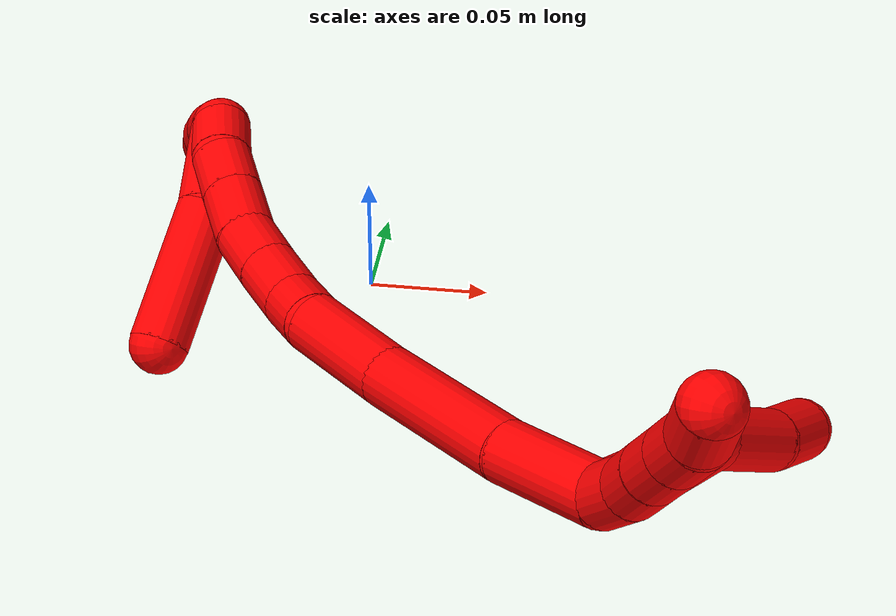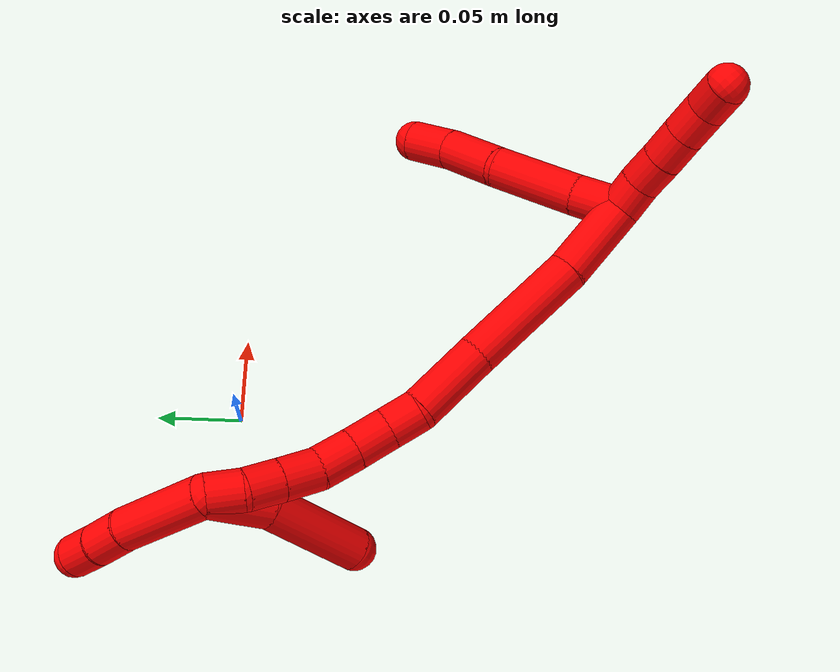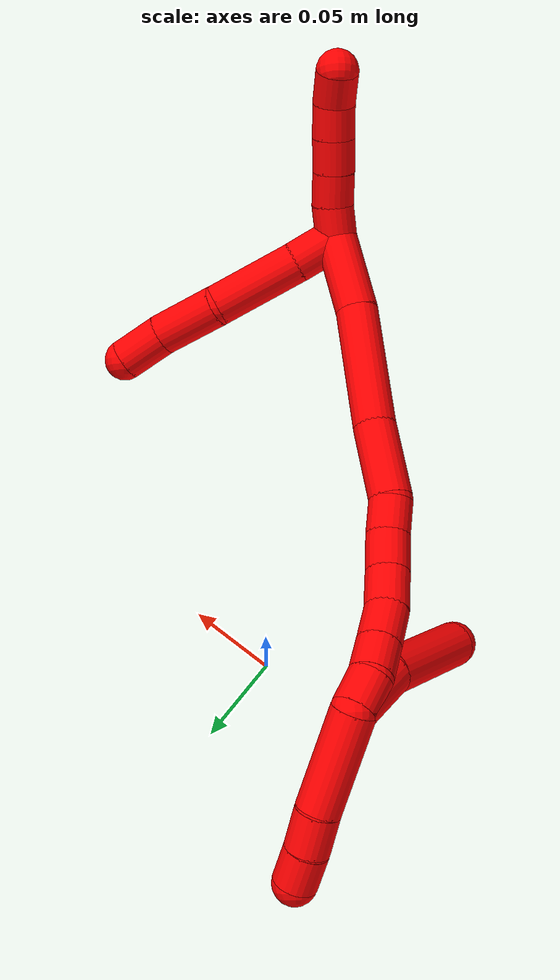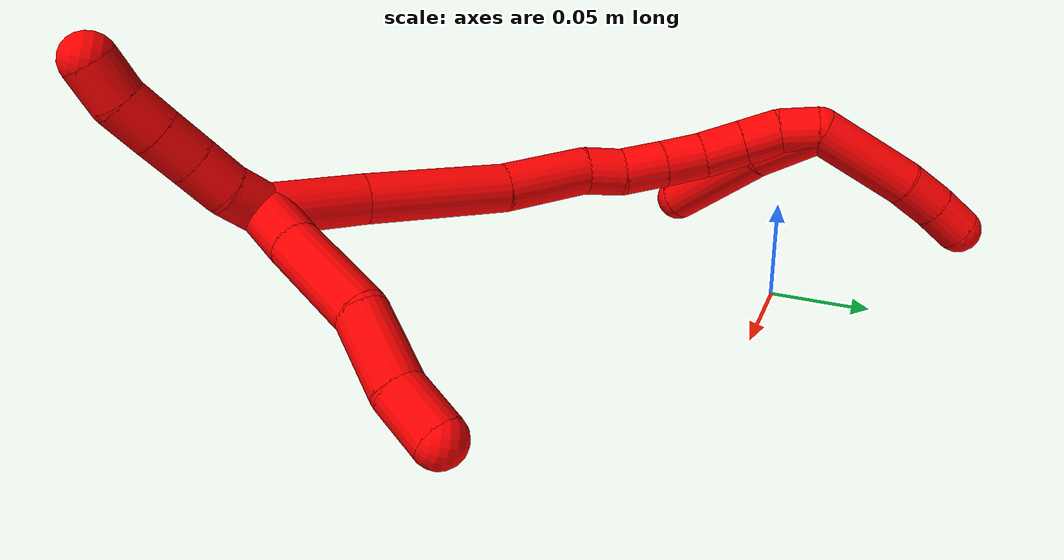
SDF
<sdf version="1.7">
 <world name="default">
  <model name="2">
   <static>0</static>
   <link name="2">
    <collision name="collision-cylinder-e_1_2_8">
     <pose>0.005946 0.01095 -0.00622 -2.08738 0.441114 -0.735375</pose>
     <geometry><cylinder><radius>0.0125</radius><length>0.027853</length></cylinder></geometry>
     <surface>
      <friction><ode><mu>1.16</mu><mu2>1.16</mu2><slip1>0</slip1><slip2>0</slip2></ode></friction>
      <contact><ode><kp>1e+06</kp><kd>1</kd><max_vel>0</max_vel><min_depth>0.001</min_depth></ode></contact>
     </surface>
    </collision>
    <visual name="visual-cylinder-e_1_2_8">
     <pose>0.005946 0.01095 -0.00622 -2.08738 0.441114 -0.735375</pose>
     <geometry><cylinder><radius>0.0125</radius><length>0.027853</length></cylinder></geometry>
     <material><ambient>1 0 0 1</ambient></material>
    </visual>
    <collision name="collision-cylinder-e_2_8_9">
     <pose>0.021747 0.044146 -0.024043 -2.05157 0.374293 -0.605483</pose>
     <geometry><cylinder><radius>0.0125</radius><length>0.053912</length></cylinder></geometry>
     <surface>
      <friction><ode><mu>1.16</mu><mu2>1.16</mu2><slip1>0</slip1><slip2>0</slip2></ode></friction>
      <contact><ode><kp>1e+06</kp><kd>1</kd><max_vel>0</max_vel><min_depth>0.001</min_depth></ode></contact>
     </surface>
    </collision>
    <visual name="visual-cylinder-e_2_8_9">
     <pose>0.021747 0.044146 -0.024043 -2.05157 0.374293 -0.605483</pose>
     <geometry><cylinder><radius>0.0125</radius><length>0.053912</length></cylinder></geometry>
     <material><ambient>1 0 0 1</ambient></material>
    </visual>
    <collision name="collision-cylinder-e_3_9_10">
     <pose>0.044268 0.080395 -0.042396 -2.01993 0.683669 -1.0308</pose>
     <geometry><cylinder><radius>0.0125</radius><length>0.040103</length></cylinder></geometry>
     <surface>
      <friction><ode><mu>1.16</mu><mu2>1.16</mu2><slip1>0</slip1><slip2>0</slip2></ode></friction>
      <contact><ode><kp>1e+06</kp><kd>1</kd><max_vel>0</max_vel><min_depth>0.001</min_depth></ode></contact>
     </surface>
    </collision>
    <visual name="visual-cylinder-e_3_9_10">
     <pose>0.044268 0.080395 -0.042396 -2.01993 0.683669 -1.0308</pose>
     <geometry><cylinder><radius>0.0125</radius><length>0.040103</length></cylinder></geometry>
     <material><ambient>1 0 0 1</ambient></material>
    </visual>
    <collision name="collision-cylinder-e_4_10_6">
     <pose>0.063572 0.104762 -0.055955 -2.15217 0.491487 -0.870413</pose>
     <geometry><cylinder><radius>0.0125</radius><length>0.028132</length></cylinder></geometry>
     <surface>
      <friction><ode><mu>1.16</mu><mu2>1.16</mu2><slip1>0</slip1><slip2>0</slip2></ode></friction>
      <contact><ode><kp>1e+06</kp><kd>1</kd><max_vel>0</max_vel><min_depth>0.001</min_depth></ode></contact>
     </surface>
    </collision>
    <visual name="visual-cylinder-e_4_10_6">
     <pose>0.063572 0.104762 -0.055955 -2.15217 0.491487 -0.870413</pose>
     <geometry><cylinder><radius>0.0125</radius><length>0.028132</length></cylinder></geometry>
     <material><ambient>1 0 0 1</ambient></material>
    </visual>
    <collision name="collision-cylinder-e_1_2_11">
     <pose>-0.003139 0.001865 0.00931 -0.197701 -0.319298 0.031935</pose>
     <geometry><cylinder><radius>0.0125</radius><length>0.02</length></cylinder></geometry>
     <surface>
      <friction><ode><mu>1.16</mu><mu2>1.16</mu2><slip1>0</slip1><slip2>0</slip2></ode></friction>
      <contact><ode><kp>1e+06</kp><kd>1</kd><max_vel>0</max_vel><min_depth>0.001</min_depth></ode></contact>
     </surface>
    </collision>
    <visual name="visual-cylinder-e_1_2_11">
     <pose>-0.003139 0.001865 0.00931 -0.197701 -0.319298 0.031935</pose>
     <geometry><cylinder><radius>0.0125</radius><length>0.02</length></cylinder></geometry>
     <material><ambient>1 0 0 1</ambient></material>
    </visual>
    <collision name="collision-cylinder-e_2_11_12">
     <pose>-0.011129 0.00473 0.027306 -0.114615 -0.506504 0.029694</pose>
     <geometry><cylinder><radius>0.0125</radius><length>0.02</length></cylinder></geometry>
     <surface>
      <friction><ode><mu>1.16</mu><mu2>1.16</mu2><slip1>0</slip1><slip2>0</slip2></ode></friction>
      <contact><ode><kp>1e+06</kp><kd>1</kd><max_vel>0</max_vel><min_depth>0.001</min_depth></ode></contact>
     </surface>
    </collision>
    <visual name="visual-cylinder-e_2_11_12">
     <pose>-0.011129 0.00473 0.027306 -0.114615 -0.506504 0.029694</pose>
     <geometry><cylinder><radius>0.0125</radius><length>0.02</length></cylinder></geometry>
     <material><ambient>1 0 0 1</ambient></material>
    </visual>
    <collision name="collision-cylinder-e_3_12_13">
     <pose>-0.020754 0.007085 0.044675 -0.154884 -0.497666 0.03943</pose>
     <geometry><cylinder><radius>0.0125</radius><length>0.02</length></cylinder></geometry>
     <surface>
      <friction><ode><mu>1.16</mu><mu2>1.16</mu2><slip1>0</slip1><slip2>0</slip2></ode></friction>
      <contact><ode><kp>1e+06</kp><kd>1</kd><max_vel>0</max_vel><min_depth>0.001</min_depth></ode></contact>
     </surface>
    </collision>
    <visual name="visual-cylinder-e_3_12_13">
     <pose>-0.020754 0.007085 0.044675 -0.154884 -0.497666 0.03943</pose>
     <geometry><cylinder><radius>0.0125</radius><length>0.02</length></cylinder></geometry>
     <material><ambient>1 0 0 1</ambient></material>
    </visual>
    <collision name="collision-cylinder-e_4_13_14">
     <pose>-0.030401 0.009675 0.062002 -0.141828 -0.508939 0.036948</pose>
     <geometry><cylinder><radius>0.0125</radius><length>0.02</length></cylinder></geometry>
     <surface>
      <friction><ode><mu>1.16</mu><mu2>1.16</mu2><slip1>0</slip1><slip2>0</slip2></ode></friction>
      <contact><ode><kp>1e+06</kp><kd>1</kd><max_vel>0</max_vel><min_depth>0.001</min_depth></ode></contact>
     </surface>
    </collision>
    <visual name="visual-cylinder-e_4_13_14">
     <pose>-0.030401 0.009675 0.062002 -0.141828 -0.508939 0.036948</pose>
     <geometry><cylinder><radius>0.0125</radius><length>0.02</length></cylinder></geometry>
     <material><ambient>1 0 0 1</ambient></material>
    </visual>
    <collision name="collision-cylinder-e_5_14_5">
     <pose>-0.042197 0.01204 0.077773 -0.157251 -0.764743 0.06335</pose>
     <geometry><cylinder><radius>0.0125</radius><length>0.02</length></cylinder></geometry>
     <surface>
      <friction><ode><mu>1.16</mu><mu2>1.16</mu2><slip1>0</slip1><slip2>0</slip2></ode></friction>
      <contact><ode><kp>1e+06</kp><kd>1</kd><max_vel>0</max_vel><min_depth>0.001</min_depth></ode></contact>
     </surface>
    </collision>
    <visual name="visual-cylinder-e_5_14_5">
     <pose>-0.042197 0.01204 0.077773 -0.157251 -0.764743 0.06335</pose>
     <geometry><cylinder><radius>0.0125</radius><length>0.02</length></cylinder></geometry>
     <material><ambient>1 0 0 1</ambient></material>
    </visual>
    <collision name="collision-cylinder-e_1_2_15">
     <pose>-0.006734 -0.002831 -0.023187 3.0201 -0.280653 -2.3284</pose>
     <geometry><cylinder><radius>0.0125</radius><length>0.048621</length></cylinder></geometry>
     <surface>
      <friction><ode><mu>1.16</mu><mu2>1.16</mu2><slip1>0</slip1><slip2>0</slip2></ode></friction>
      <contact><ode><kp>1e+06</kp><kd>1</kd><max_vel>0</max_vel><min_depth>0.001</min_depth></ode></contact>
     </surface>
    </collision>
    <visual name="visual-cylinder-e_1_2_15">
     <pose>-0.006734 -0.002831 -0.023187 3.0201 -0.280653 -2.3284</pose>
     <geometry><cylinder><radius>0.0125</radius><length>0.048621</length></cylinder></geometry>
     <material><ambient>1 0 0 1</ambient></material>
    </visual>
    <collision name="collision-cylinder-e_2_15_16">
     <pose>-0.023161 -0.005592 -0.081609 -3.13959 -0.268489 3.12676</pose>
     <geometry><cylinder><radius>0.0125</radius><length>0.073087</length></cylinder></geometry>
     <surface>
      <friction><ode><mu>1.16</mu><mu2>1.16</mu2><slip1>0</slip1><slip2>0</slip2></ode></friction>
      <contact><ode><kp>1e+06</kp><kd>1</kd><max_vel>0</max_vel><min_depth>0.001</min_depth></ode></contact>
     </surface>
    </collision>
    <visual name="visual-cylinder-e_2_15_16">
     <pose>-0.023161 -0.005592 -0.081609 -3.13959 -0.268489 3.12676</pose>
     <geometry><cylinder><radius>0.0125</radius><length>0.073087</length></cylinder></geometry>
     <material><ambient>1 0 0 1</ambient></material>
    </visual>
    <collision name="collision-cylinder-e_3_16_17">
     <pose>-0.041776 -0.005699 -0.138344 3.13332 -0.393248 -3.10004</pose>
     <geometry><cylinder><radius>0.0125</radius><length>0.046558</length></cylinder></geometry>
     <surface>
      <friction><ode><mu>1.16</mu><mu2>1.16</mu2><slip1>0</slip1><slip2>0</slip2></ode></friction>
      <contact><ode><kp>1e+06</kp><kd>1</kd><max_vel>0</max_vel><min_depth>0.001</min_depth></ode></contact>
     </surface>
    </collision>
    <visual name="visual-cylinder-e_3_16_17">
     <pose>-0.041776 -0.005699 -0.138344 3.13332 -0.393248 -3.10004</pose>
     <geometry><cylinder><radius>0.0125</radius><length>0.046558</length></cylinder></geometry>
     <material><ambient>1 0 0 1</ambient></material>
    </visual>
    <collision name="collision-cylinder-e_4_17_18">
     <pose>-0.052466 -0.003739 -0.169811 -2.93028 -0.171953 1.36488</pose>
     <geometry><cylinder><radius>0.0125</radius><length>0.020691</length></cylinder></geometry>
     <surface>
      <friction><ode><mu>1.16</mu><mu2>1.16</mu2><slip1>0</slip1><slip2>0</slip2></ode></friction>
      <contact><ode><kp>1e+06</kp><kd>1</kd><max_vel>0</max_vel><min_depth>0.001</min_depth></ode></contact>
     </surface>
    </collision>
    <visual name="visual-cylinder-e_4_17_18">
     <pose>-0.052466 -0.003739 -0.169811 -2.93028 -0.171953 1.36488</pose>
     <geometry><cylinder><radius>0.0125</radius><length>0.020691</length></cylinder></geometry>
     <material><ambient>1 0 0 1</ambient></material>
    </visual>
    <collision name="collision-cylinder-e_5_18_19">
     <pose>-0.058749 0.000839 -0.190184 -2.91129 -0.399494 2.10346</pose>
     <geometry><cylinder><radius>0.0125</radius><length>0.023206</length></cylinder></geometry>
     <surface>
      <friction><ode><mu>1.16</mu><mu2>1.16</mu2><slip1>0</slip1><slip2>0</slip2></ode></friction>
      <contact><ode><kp>1e+06</kp><kd>1</kd><max_vel>0</max_vel><min_depth>0.001</min_depth></ode></contact>
     </surface>
    </collision>
    <visual name="visual-cylinder-e_5_18_19">
     <pose>-0.058749 0.000839 -0.190184 -2.91129 -0.399494 2.10346</pose>
     <geometry><cylinder><radius>0.0125</radius><length>0.023206</length></cylinder></geometry>
     <material><ambient>1 0 0 1</ambient></material>
    </visual>
    <collision name="collision-cylinder-e_6_19_20">
     <pose>-0.067902 0.006007 -0.210606 -2.87559 -0.4204 2.02139</pose>
     <geometry><cylinder><radius>0.0125</radius><length>0.022739</length></cylinder></geometry>
     <surface>
      <friction><ode><mu>1.16</mu><mu2>1.16</mu2><slip1>0</slip1><slip2>0</slip2></ode></friction>
      <contact><ode><kp>1e+06</kp><kd>1</kd><max_vel>0</max_vel><min_depth>0.001</min_depth></ode></contact>
     </surface>
    </collision>
    <visual name="visual-cylinder-e_6_19_20">
     <pose>-0.067902 0.006007 -0.210606 -2.87559 -0.4204 2.02139</pose>
     <geometry><cylinder><radius>0.0125</radius><length>0.022739</length></cylinder></geometry>
     <material><ambient>1 0 0 1</ambient></material>
    </visual>
    <collision name="collision-cylinder-e_7_20_21">
     <pose>-0.078122 0.013713 -0.229421 -2.62697 -0.504266 1.54956</pose>
     <geometry><cylinder><radius>0.0125</radius><length>0.023097</length></cylinder></geometry>
     <surface>
      <friction><ode><mu>1.16</mu><mu2>1.16</mu2><slip1>0</slip1><slip2>0</slip2></ode></friction>
      <contact><ode><kp>1e+06</kp><kd>1</kd><max_vel>0</max_vel><min_depth>0.001</min_depth></ode></contact>
     </surface>
    </collision>
    <visual name="visual-cylinder-e_7_20_21">
     <pose>-0.078122 0.013713 -0.229421 -2.62697 -0.504266 1.54956</pose>
     <geometry><cylinder><radius>0.0125</radius><length>0.023097</length></cylinder></geometry>
     <material><ambient>1 0 0 1</ambient></material>
    </visual>
    <collision name="collision-cylinder-e_8_21_22">
     <pose>-0.088758 0.023297 -0.246066 -2.61043 -0.507336 1.52279</pose>
     <geometry><cylinder><radius>0.0125</radius><length>0.020814</length></cylinder></geometry>
     <surface>
      <friction><ode><mu>1.16</mu><mu2>1.16</mu2><slip1>0</slip1><slip2>0</slip2></ode></friction>
      <contact><ode><kp>1e+06</kp><kd>1</kd><max_vel>0</max_vel><min_depth>0.001</min_depth></ode></contact>
     </surface>
    </collision>
    <visual name="visual-cylinder-e_8_21_22">
     <pose>-0.088758 0.023297 -0.246066 -2.61043 -0.507336 1.52279</pose>
     <geometry><cylinder><radius>0.0125</radius><length>0.020814</length></cylinder></geometry>
     <material><ambient>1 0 0 1</ambient></material>
    </visual>
    <collision name="collision-cylinder-e_9_22_1">
     <pose>-0.096396 0.034042 -0.262149 -2.50136 -0.246117 0.714179</pose>
     <geometry><cylinder><radius>0.0125</radius><length>0.021188</length></cylinder></geometry>
     <surface>
      <friction><ode><mu>1.16</mu><mu2>1.16</mu2><slip1>0</slip1><slip2>0</slip2></ode></friction>
      <contact><ode><kp>1e+06</kp><kd>1</kd><max_vel>0</max_vel><min_depth>0.001</min_depth></ode></contact>
     </surface>
    </collision>
    <visual name="visual-cylinder-e_9_22_1">
     <pose>-0.096396 0.034042 -0.262149 -2.50136 -0.246117 0.714179</pose>
     <geometry><cylinder><radius>0.0125</radius><length>0.021188</length></cylinder></geometry>
     <material><ambient>1 0 0 1</ambient></material>
    </visual>
    <collision name="collision-cylinder-e_1_1_23">
     <pose>-0.089494 0.025882 -0.261892 1.03461 0.518181 0.299362</pose>
     <geometry><cylinder><radius>0.0125</radius><length>0.038292</length></cylinder></geometry>
     <surface>
      <friction><ode><mu>1.16</mu><mu2>1.16</mu2><slip1>0</slip1><slip2>0</slip2></ode></friction>
      <contact><ode><kp>1e+06</kp><kd>1</kd><max_vel>0</max_vel><min_depth>0.001</min_depth></ode></contact>
     </surface>
    </collision>
    <visual name="visual-cylinder-e_1_1_23">
     <pose>-0.089494 0.025882 -0.261892 1.03461 0.518181 0.299362</pose>
     <geometry><cylinder><radius>0.0125</radius><length>0.038292</length></cylinder></geometry>
     <material><ambient>1 0 0 1</ambient></material>
    </visual>
    <collision name="collision-cylinder-e_2_23_4">
     <pose>-0.06428 -0.014298 -0.247509 1.34719 0.535015 0.430711</pose>
     <geometry><cylinder><radius>0.0125</radius><length>0.061708</length></cylinder></geometry>
     <surface>
      <friction><ode><mu>1.16</mu><mu2>1.16</mu2><slip1>0</slip1><slip2>0</slip2></ode></friction>
      <contact><ode><kp>1e+06</kp><kd>1</kd><max_vel>0</max_vel><min_depth>0.001</min_depth></ode></contact>
     </surface>
    </collision>
    <visual name="visual-cylinder-e_2_23_4">
     <pose>-0.06428 -0.014298 -0.247509 1.34719 0.535015 0.430711</pose>
     <geometry><cylinder><radius>0.0125</radius><length>0.061708</length></cylinder></geometry>
     <material><ambient>1 0 0 1</ambient></material>
    </visual>
    <collision name="collision-cylinder-e_1_1_24">
     <pose>-0.09015 0.048057 -0.296046 -2.84373 0.317747 -1.6364</pose>
     <geometry><cylinder><radius>0.0125</radius><length>0.056506</length></cylinder></geometry>
     <surface>
      <friction><ode><mu>1.16</mu><mu2>1.16</mu2><slip1>0</slip1><slip2>0</slip2></ode></friction>
      <contact><ode><kp>1e+06</kp><kd>1</kd><max_vel>0</max_vel><min_depth>0.001</min_depth></ode></contact>
     </surface>
    </collision>
    <visual name="visual-cylinder-e_1_1_24">
     <pose>-0.09015 0.048057 -0.296046 -2.84373 0.317747 -1.6364</pose>
     <geometry><cylinder><radius>0.0125</radius><length>0.056506</length></cylinder></geometry>
     <material><ambient>1 0 0 1</ambient></material>
    </visual>
    <collision name="collision-cylinder-e_2_24_25">
     <pose>-0.076987 0.057967 -0.332007 -2.94675 0.391453 -2.22563</pose>
     <geometry><cylinder><radius>0.0125</radius><length>0.022726</length></cylinder></geometry>
     <surface>
      <friction><ode><mu>1.16</mu><mu2>1.16</mu2><slip1>0</slip1><slip2>0</slip2></ode></friction>
      <contact><ode><kp>1e+06</kp><kd>1</kd><max_vel>0</max_vel><min_depth>0.001</min_depth></ode></contact>
     </surface>
    </collision>
    <visual name="visual-cylinder-e_2_24_25">
     <pose>-0.076987 0.057967 -0.332007 -2.94675 0.391453 -2.22563</pose>
     <geometry><cylinder><radius>0.0125</radius><length>0.022726</length></cylinder></geometry>
     <material><ambient>1 0 0 1</ambient></material>
    </visual>
    <collision name="collision-cylinder-e_3_25_3">
     <pose>-0.067844 0.062067 -0.351281 -2.91513 0.481404 -2.27391</pose>
     <geometry><cylinder><radius>0.0125</radius><length>0.020768</length></cylinder></geometry>
     <surface>
      <friction><ode><mu>1.16</mu><mu2>1.16</mu2><slip1>0</slip1><slip2>0</slip2></ode></friction>
      <contact><ode><kp>1e+06</kp><kd>1</kd><max_vel>0</max_vel><min_depth>0.001</min_depth></ode></contact>
     </surface>
    </collision>
    <visual name="visual-cylinder-e_3_25_3">
     <pose>-0.067844 0.062067 -0.351281 -2.91513 0.481404 -2.27391</pose>
     <geometry><cylinder><radius>0.0125</radius><length>0.020768</length></cylinder></geometry>
     <material><ambient>1 0 0 1</ambient></material>
    </visual>
    <collision name="collision-sphere-3">
     <pose>-0.063036 0.064134 -0.360249 0 -0 0</pose>
     <geometry><sphere><radius>0.0125</radius></sphere></geometry>
     <surface>
      <friction><ode><mu>1.16</mu><mu2>1.16</mu2><slip1>0</slip1><slip2>0</slip2></ode></friction>
      <contact><ode><kp>1e+06</kp><kd>1</kd><max_vel>0</max_vel><min_depth>0.001</min_depth></ode></contact>
     </surface>
    </collision>
    <visual name="visual-sphere-3">
     <pose>-0.063036 0.064134 -0.360249 0 -0 0</pose>
     <geometry><sphere><radius>0.0125</radius></sphere></geometry>
     <material><ambient>1 0 0 1</ambient></material>
    </visual>
    <collision name="collision-sphere-25">
     <pose>-0.072652 0.060001 -0.342312 0 -0 0</pose>
     <geometry><sphere><radius>0.0125</radius></sphere></geometry>
     <surface>
      <friction><ode><mu>1.16</mu><mu2>1.16</mu2><slip1>0</slip1><slip2>0</slip2></ode></friction>
      <contact><ode><kp>1e+06</kp><kd>1</kd><max_vel>0</max_vel><min_depth>0.001</min_depth></ode></contact>
     </surface>
    </collision>
    <visual name="visual-sphere-25">
     <pose>-0.072652 0.060001 -0.342312 0 -0 0</pose>
     <geometry><sphere><radius>0.0125</radius></sphere></geometry>
     <material><ambient>1 0 0 1</ambient></material>
    </visual>
    <collision name="collision-sphere-24">
     <pose>-0.081323 0.055934 -0.321703 0 -0 0</pose>
     <geometry><sphere><radius>0.0125</radius></sphere></geometry>
     <surface>
      <friction><ode><mu>1.16</mu><mu2>1.16</mu2><slip1>0</slip1><slip2>0</slip2></ode></friction>
      <contact><ode><kp>1e+06</kp><kd>1</kd><max_vel>0</max_vel><min_depth>0.001</min_depth></ode></contact>
     </surface>
    </collision>
    <visual name="visual-sphere-24">
     <pose>-0.081323 0.055934 -0.321703 0 -0 0</pose>
     <geometry><sphere><radius>0.0125</radius></sphere></geometry>
     <material><ambient>1 0 0 1</ambient></material>
    </visual>
    <collision name="collision-sphere-4">
     <pose>-0.048549 -0.04018 -0.241623 0 -0 0</pose>
     <geometry><sphere><radius>0.0125</radius></sphere></geometry>
     <surface>
      <friction><ode><mu>1.16</mu><mu2>1.16</mu2><slip1>0</slip1><slip2>0</slip2></ode></friction>
      <contact><ode><kp>1e+06</kp><kd>1</kd><max_vel>0</max_vel><min_depth>0.001</min_depth></ode></contact>
     </surface>
    </collision>
    <visual name="visual-sphere-4">
     <pose>-0.048549 -0.04018 -0.241623 0 -0 0</pose>
     <geometry><sphere><radius>0.0125</radius></sphere></geometry>
     <material><ambient>1 0 0 1</ambient></material>
    </visual>
    <collision name="collision-sphere-23">
     <pose>-0.080011 0.011584 -0.253395 0 -0 0</pose>
     <geometry><sphere><radius>0.0125</radius></sphere></geometry>
     <surface>
      <friction><ode><mu>1.16</mu><mu2>1.16</mu2><slip1>0</slip1><slip2>0</slip2></ode></friction>
      <contact><ode><kp>1e+06</kp><kd>1</kd><max_vel>0</max_vel><min_depth>0.001</min_depth></ode></contact>
     </surface>
    </collision>
    <visual name="visual-sphere-23">
     <pose>-0.080011 0.011584 -0.253395 0 -0 0</pose>
     <geometry><sphere><radius>0.0125</radius></sphere></geometry>
     <material><ambient>1 0 0 1</ambient></material>
    </visual>
    <collision name="collision-sphere-1">
     <pose>-0.098977 0.04018 -0.270389 0 -0 0</pose>
     <geometry><sphere><radius>0.0125</radius></sphere></geometry>
     <surface>
      <friction><ode><mu>1.16</mu><mu2>1.16</mu2><slip1>0</slip1><slip2>0</slip2></ode></friction>
      <contact><ode><kp>1e+06</kp><kd>1</kd><max_vel>0</max_vel><min_depth>0.001</min_depth></ode></contact>
     </surface>
    </collision>
    <visual name="visual-sphere-1">
     <pose>-0.098977 0.04018 -0.270389 0 -0 0</pose>
     <geometry><sphere><radius>0.0125</radius></sphere></geometry>
     <material><ambient>1 0 0 1</ambient></material>
    </visual>
    <collision name="collision-sphere-22">
     <pose>-0.093814 0.027904 -0.253909 0 -0 0</pose>
     <geometry><sphere><radius>0.0125</radius></sphere></geometry>
     <surface>
      <friction><ode><mu>1.16</mu><mu2>1.16</mu2><slip1>0</slip1><slip2>0</slip2></ode></friction>
      <contact><ode><kp>1e+06</kp><kd>1</kd><max_vel>0</max_vel><min_depth>0.001</min_depth></ode></contact>
     </surface>
    </collision>
    <visual name="visual-sphere-22">
     <pose>-0.093814 0.027904 -0.253909 0 -0 0</pose>
     <geometry><sphere><radius>0.0125</radius></sphere></geometry>
     <material><ambient>1 0 0 1</ambient></material>
    </visual>
    <collision name="collision-sphere-21">
     <pose>-0.083702 0.018689 -0.238223 0 -0 0</pose>
     <geometry><sphere><radius>0.0125</radius></sphere></geometry>
     <surface>
      <friction><ode><mu>1.16</mu><mu2>1.16</mu2><slip1>0</slip1><slip2>0</slip2></ode></friction>
      <contact><ode><kp>1e+06</kp><kd>1</kd><max_vel>0</max_vel><min_depth>0.001</min_depth></ode></contact>
     </surface>
    </collision>
    <visual name="visual-sphere-21">
     <pose>-0.083702 0.018689 -0.238223 0 -0 0</pose>
     <geometry><sphere><radius>0.0125</radius></sphere></geometry>
     <material><ambient>1 0 0 1</ambient></material>
    </visual>
    <collision name="collision-sphere-11">
     <pose>-0.006278 0.00373 0.018619 0 -0 0</pose>
     <geometry><sphere><radius>0.0125</radius></sphere></geometry>
     <surface>
      <friction><ode><mu>1.16</mu><mu2>1.16</mu2><slip1>0</slip1><slip2>0</slip2></ode></friction>
      <contact><ode><kp>1e+06</kp><kd>1</kd><max_vel>0</max_vel><min_depth>0.001</min_depth></ode></contact>
     </surface>
    </collision>
    <visual name="visual-sphere-11">
     <pose>-0.006278 0.00373 0.018619 0 -0 0</pose>
     <geometry><sphere><radius>0.0125</radius></sphere></geometry>
     <material><ambient>1 0 0 1</ambient></material>
    </visual>
    <collision name="collision-sphere-6">
     <pose>0.07021 0.115125 -0.062766 0 -0 0</pose>
     <geometry><sphere><radius>0.0125</radius></sphere></geometry>
     <surface>
      <friction><ode><mu>1.16</mu><mu2>1.16</mu2><slip1>0</slip1><slip2>0</slip2></ode></friction>
      <contact><ode><kp>1e+06</kp><kd>1</kd><max_vel>0</max_vel><min_depth>0.001</min_depth></ode></contact>
     </surface>
    </collision>
    <visual name="visual-sphere-6">
     <pose>0.07021 0.115125 -0.062766 0 -0 0</pose>
     <geometry><sphere><radius>0.0125</radius></sphere></geometry>
     <material><ambient>1 0 0 1</ambient></material>
    </visual>
    <collision name="collision-sphere-10">
     <pose>0.056933 0.094398 -0.049145 0 -0 0</pose>
     <geometry><sphere><radius>0.0125</radius></sphere></geometry>
     <surface>
      <friction><ode><mu>1.16</mu><mu2>1.16</mu2><slip1>0</slip1><slip2>0</slip2></ode></friction>
      <contact><ode><kp>1e+06</kp><kd>1</kd><max_vel>0</max_vel><min_depth>0.001</min_depth></ode></contact>
     </surface>
    </collision>
    <visual name="visual-sphere-10">
     <pose>0.056933 0.094398 -0.049145 0 -0 0</pose>
     <geometry><sphere><radius>0.0125</radius></sphere></geometry>
     <material><ambient>1 0 0 1</ambient></material>
    </visual>
    <collision name="collision-sphere-9">
     <pose>0.031603 0.066391 -0.035646 0 -0 0</pose>
     <geometry><sphere><radius>0.0125</radius></sphere></geometry>
     <surface>
      <friction><ode><mu>1.16</mu><mu2>1.16</mu2><slip1>0</slip1><slip2>0</slip2></ode></friction>
      <contact><ode><kp>1e+06</kp><kd>1</kd><max_vel>0</max_vel><min_depth>0.001</min_depth></ode></contact>
     </surface>
    </collision>
    <visual name="visual-sphere-9">
     <pose>0.031603 0.066391 -0.035646 0 -0 0</pose>
     <geometry><sphere><radius>0.0125</radius></sphere></geometry>
     <material><ambient>1 0 0 1</ambient></material>
    </visual>
    <collision name="collision-sphere-2">
     <geometry><sphere><radius>0.0125</radius></sphere></geometry>
     <surface>
      <friction><ode><mu>1.16</mu><mu2>1.16</mu2><slip1>0</slip1><slip2>0</slip2></ode></friction>
      <contact><ode><kp>1e+06</kp><kd>1</kd><max_vel>0</max_vel><min_depth>0.001</min_depth></ode></contact>
     </surface>
    </collision>
    <visual name="visual-sphere-2">
     <geometry><sphere><radius>0.0125</radius></sphere></geometry>
     <material><ambient>1 0 0 1</ambient></material>
    </visual>
    <collision name="collision-sphere-19">
     <pose>-0.063262 0.003279 -0.200591 0 -0 0</pose>
     <geometry><sphere><radius>0.0125</radius></sphere></geometry>
     <surface>
      <friction><ode><mu>1.16</mu><mu2>1.16</mu2><slip1>0</slip1><slip2>0</slip2></ode></friction>
      <contact><ode><kp>1e+06</kp><kd>1</kd><max_vel>0</max_vel><min_depth>0.001</min_depth></ode></contact>
     </surface>
    </collision>
    <visual name="visual-sphere-19">
     <pose>-0.063262 0.003279 -0.200591 0 -0 0</pose>
     <geometry><sphere><radius>0.0125</radius></sphere></geometry>
     <material><ambient>1 0 0 1</ambient></material>
    </visual>
    <collision name="collision-sphere-8">
     <pose>0.011892 0.0219 -0.01244 0 -0 0</pose>
     <geometry><sphere><radius>0.0125</radius></sphere></geometry>
     <surface>
      <friction><ode><mu>1.16</mu><mu2>1.16</mu2><slip1>0</slip1><slip2>0</slip2></ode></friction>
      <contact><ode><kp>1e+06</kp><kd>1</kd><max_vel>0</max_vel><min_depth>0.001</min_depth></ode></contact>
     </surface>
    </collision>
    <visual name="visual-sphere-8">
     <pose>0.011892 0.0219 -0.01244 0 -0 0</pose>
     <geometry><sphere><radius>0.0125</radius></sphere></geometry>
     <material><ambient>1 0 0 1</ambient></material>
    </visual>
    <collision name="collision-sphere-12">
     <pose>-0.01598 0.00573 0.035993 0 -0 0</pose>
     <geometry><sphere><radius>0.0125</radius></sphere></geometry>
     <surface>
      <friction><ode><mu>1.16</mu><mu2>1.16</mu2><slip1>0</slip1><slip2>0</slip2></ode></friction>
      <contact><ode><kp>1e+06</kp><kd>1</kd><max_vel>0</max_vel><min_depth>0.001</min_depth></ode></contact>
     </surface>
    </collision>
    <visual name="visual-sphere-12">
     <pose>-0.01598 0.00573 0.035993 0 -0 0</pose>
     <geometry><sphere><radius>0.0125</radius></sphere></geometry>
     <material><ambient>1 0 0 1</ambient></material>
    </visual>
    <collision name="collision-sphere-13">
     <pose>-0.025528 0.008441 0.053357 0 -0 0</pose>
     <geometry><sphere><radius>0.0125</radius></sphere></geometry>
     <surface>
      <friction><ode><mu>1.16</mu><mu2>1.16</mu2><slip1>0</slip1><slip2>0</slip2></ode></friction>
      <contact><ode><kp>1e+06</kp><kd>1</kd><max_vel>0</max_vel><min_depth>0.001</min_depth></ode></contact>
     </surface>
    </collision>
    <visual name="visual-sphere-13">
     <pose>-0.025528 0.008441 0.053357 0 -0 0</pose>
     <geometry><sphere><radius>0.0125</radius></sphere></geometry>
     <material><ambient>1 0 0 1</ambient></material>
    </visual>
    <collision name="collision-sphere-14">
     <pose>-0.035273 0.01091 0.070647 0 -0 0</pose>
     <geometry><sphere><radius>0.0125</radius></sphere></geometry>
     <surface>
      <friction><ode><mu>1.16</mu><mu2>1.16</mu2><slip1>0</slip1><slip2>0</slip2></ode></friction>
      <contact><ode><kp>1e+06</kp><kd>1</kd><max_vel>0</max_vel><min_depth>0.001</min_depth></ode></contact>
     </surface>
    </collision>
    <visual name="visual-sphere-14">
     <pose>-0.035273 0.01091 0.070647 0 -0 0</pose>
     <geometry><sphere><radius>0.0125</radius></sphere></geometry>
     <material><ambient>1 0 0 1</ambient></material>
    </visual>
    <collision name="collision-sphere-5">
     <pose>-0.04912 0.01317 0.0849 0 -0 0</pose>
     <geometry><sphere><radius>0.0125</radius></sphere></geometry>
     <surface>
      <friction><ode><mu>1.16</mu><mu2>1.16</mu2><slip1>0</slip1><slip2>0</slip2></ode></friction>
      <contact><ode><kp>1e+06</kp><kd>1</kd><max_vel>0</max_vel><min_depth>0.001</min_depth></ode></contact>
     </surface>
    </collision>
    <visual name="visual-sphere-5">
     <pose>-0.04912 0.01317 0.0849 0 -0 0</pose>
     <geometry><sphere><radius>0.0125</radius></sphere></geometry>
     <material><ambient>1 0 0 1</ambient></material>
    </visual>
    <collision name="collision-sphere-15">
     <pose>-0.013467 -0.005662 -0.046374 0 -0 0</pose>
     <geometry><sphere><radius>0.0125</radius></sphere></geometry>
     <surface>
      <friction><ode><mu>1.16</mu><mu2>1.16</mu2><slip1>0</slip1><slip2>0</slip2></ode></friction>
      <contact><ode><kp>1e+06</kp><kd>1</kd><max_vel>0</max_vel><min_depth>0.001</min_depth></ode></contact>
     </surface>
    </collision>
    <visual name="visual-sphere-15">
     <pose>-0.013467 -0.005662 -0.046374 0 -0 0</pose>
     <geometry><sphere><radius>0.0125</radius></sphere></geometry>
     <material><ambient>1 0 0 1</ambient></material>
    </visual>
    <collision name="collision-sphere-16">
     <pose>-0.032855 -0.005521 -0.116843 0 -0 0</pose>
     <geometry><sphere><radius>0.0125</radius></sphere></geometry>
     <surface>
      <friction><ode><mu>1.16</mu><mu2>1.16</mu2><slip1>0</slip1><slip2>0</slip2></ode></friction>
      <contact><ode><kp>1e+06</kp><kd>1</kd><max_vel>0</max_vel><min_depth>0.001</min_depth></ode></contact>
     </surface>
    </collision>
    <visual name="visual-sphere-16">
     <pose>-0.032855 -0.005521 -0.116843 0 -0 0</pose>
     <geometry><sphere><radius>0.0125</radius></sphere></geometry>
     <material><ambient>1 0 0 1</ambient></material>
    </visual>
    <collision name="collision-sphere-17">
     <pose>-0.050696 -0.005877 -0.159845 0 -0 0</pose>
     <geometry><sphere><radius>0.0125</radius></sphere></geometry>
     <surface>
      <friction><ode><mu>1.16</mu><mu2>1.16</mu2><slip1>0</slip1><slip2>0</slip2></ode></friction>
      <contact><ode><kp>1e+06</kp><kd>1</kd><max_vel>0</max_vel><min_depth>0.001</min_depth></ode></contact>
     </surface>
    </collision>
    <visual name="visual-sphere-17">
     <pose>-0.050696 -0.005877 -0.159845 0 -0 0</pose>
     <geometry><sphere><radius>0.0125</radius></sphere></geometry>
     <material><ambient>1 0 0 1</ambient></material>
    </visual>
    <collision name="collision-sphere-18">
     <pose>-0.054236 -0.001601 -0.179777 0 -0 0</pose>
     <geometry><sphere><radius>0.0125</radius></sphere></geometry>
     <surface>
      <friction><ode><mu>1.16</mu><mu2>1.16</mu2><slip1>0</slip1><slip2>0</slip2></ode></friction>
      <contact><ode><kp>1e+06</kp><kd>1</kd><max_vel>0</max_vel><min_depth>0.001</min_depth></ode></contact>
     </surface>
    </collision>
    <visual name="visual-sphere-18">
     <pose>-0.054236 -0.001601 -0.179777 0 -0 0</pose>
     <geometry><sphere><radius>0.0125</radius></sphere></geometry>
     <material><ambient>1 0 0 1</ambient></material>
    </visual>
    <collision name="collision-sphere-20">
     <pose>-0.072542 0.008736 -0.22062 0 -0 0</pose>
     <geometry><sphere><radius>0.0125</radius></sphere></geometry>
     <surface>
      <friction><ode><mu>1.16</mu><mu2>1.16</mu2><slip1>0</slip1><slip2>0</slip2></ode></friction>
      <contact><ode><kp>1e+06</kp><kd>1</kd><max_vel>0</max_vel><min_depth>0.001</min_depth></ode></contact>
     </surface>
    </collision>
    <visual name="visual-sphere-20">
     <pose>-0.072542 0.008736 -0.22062 0 -0 0</pose>
     <geometry><sphere><radius>0.0125</radius></sphere></geometry>
     <material><ambient>1 0 0 1</ambient></material>
    </visual>
    <inertial>
     <pose>-0.035399 0.021046 -0.132556 0 -0 0</pose>
     <mass>0.75</mass>
     <inertia>
      <ixx>-3.2e-05</ixx>
      <ixy>0</ixy>
      <ixz>0</ixz>
      <iyy>6.3e-05</iyy>
      <iyz>0</iyz>
      <izz>-4.1e-05</izz>
     </inertia>
    </inertial>
   </link>
   <pose>0.118759 -0.21776 0.064487 0.665702 1.10555 -0.138467</pose>
  </model>
 </world>
</sdf>
